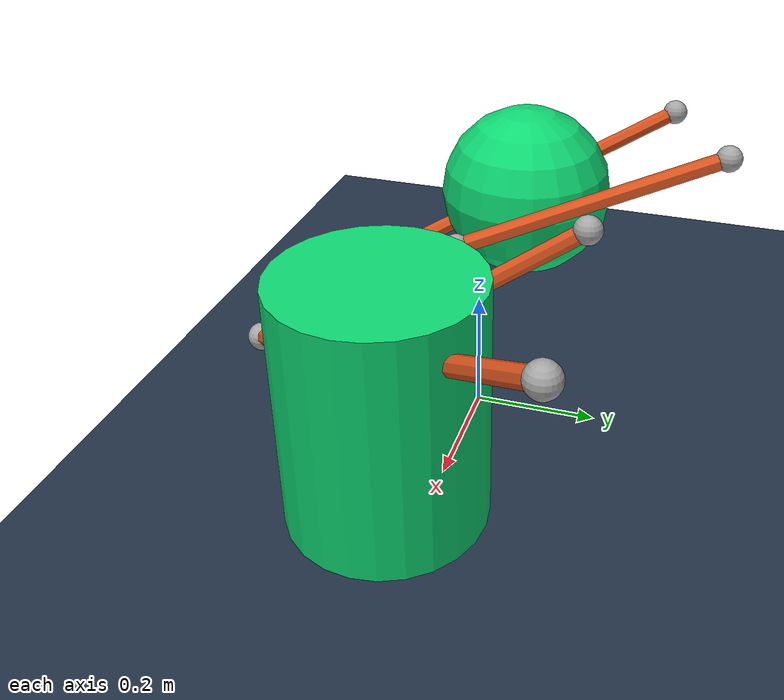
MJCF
<mujoco model="tendon_wraps">
  <statistic center="-.02 -.02 .2" extent=".75"/>

  <visual>
    <global offwidth="1159" offheight="682" elevation="-40"/>
    <quality shadowsize="4096" offsamples="8" numslices="32" numstacks="24"/>
    <headlight ambient=".22 .22 .22" diffuse=".45 .45 .45" specular=".35 .35 .35"/>
  </visual>

  <asset>
    <texture name="grid" type="2d" builtin="checker" width="512" height="512"
             rgb1=".18 .26 .36" rgb2=".09 .14 .20" mark="edge" markrgb=".85 .85 .85"/>
    <material name="grid" texture="grid" texrepeat="2 2" texuniform="true" reflectance=".25"/>
  </asset>

  <default>
    <site type="sphere" size=".023" rgba=".65 .65 .65 1"/>
    <tendon width=".015" rgba=".85 .33 .12 1"/>
    <default class="sidesite">
      <site group="3" rgba=".2 .8 .9 1"/>
    </default>
  </default>

  <worldbody>
    <light pos="-.2 -.8 1.8" dir=".1 .3 -1" diffuse=".7 .7 .7" specular=".35 .35 .35"/>

    <geom type="plane" size="2 2 .1" material="grid"/>

    <!-- Sphere on left -->
    <geom name="sphere" type="sphere" pos="-.40 -.02 .22" size=".165" rgba=".05 .85 .45 1"/>
    <!-- Outer wrap around front-left of sphere -->
    <site name="s_out1" pos="-.56 .24 .35"/>
    <site name="s_out2" pos="-.22 -.34 .07"/>
    <site name="s_outside" class="sidesite" pos="-.62 -.12 .20"/>
    <!-- Inside wrap on right side of sphere -->
    <site name="s_in1" pos="-.28 .36 .38"/>
    <site name="s_in2" pos="-.13 -.08 .22"/>
    <site name="s_inside" class="sidesite" pos="-.28 .05 .25"/>

    <!-- Cylinder on right -->
    <geom name="cylinder" type="cylinder" pos=".36 -.03 .25" size=".145 .185" rgba=".05 .85 .45 1"/>
    <!-- Outer helical wrap around front-right of cylinder -->
    <site name="c_out1" pos=".53 .22 .45"/>
    <site name="c_out2" pos=".12 -.34 .14"/>
    <site name="c_outside" class="sidesite" pos=".58 -.15 .24"/>
    <!-- Inside wrap on left side of cylinder -->
    <site name="c_in1" pos=".05 .18 .38"/>
    <site name="c_in2" pos=".10 -.14 .16"/>
    <site name="c_inside" class="sidesite" pos=".25 -.02 .22"/>
  </worldbody>

  <tendon>
    <spatial>
      <site site="s_out1"/>
      <geom geom="sphere" sidesite="s_outside"/>
      <site site="s_out2"/>
    </spatial>
    <spatial>
      <site site="s_in1"/>
      <geom geom="sphere" sidesite="s_inside"/>
      <site site="s_in2"/>
    </spatial>
    <spatial>
      <site site="c_out1"/>
      <geom geom="cylinder" sidesite="c_outside"/>
      <site site="c_out2"/>
    </spatial>
    <spatial>
      <site site="c_in1"/>
      <geom geom="cylinder" sidesite="c_inside"/>
      <site site="c_in2"/>
    </spatial>
  </tendon>
</mujoco>
